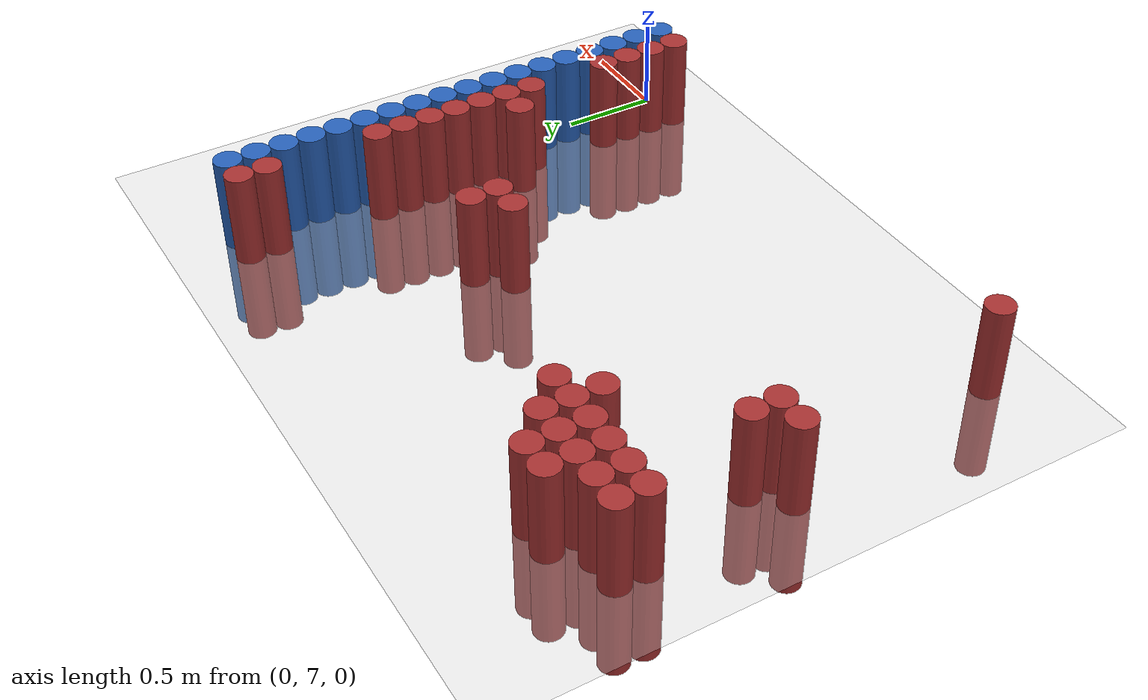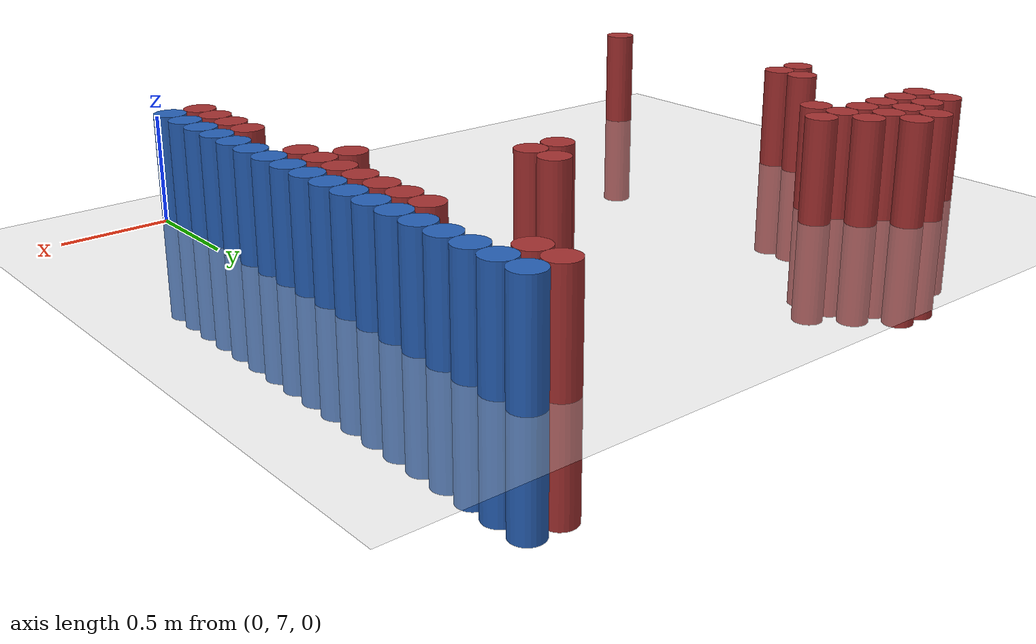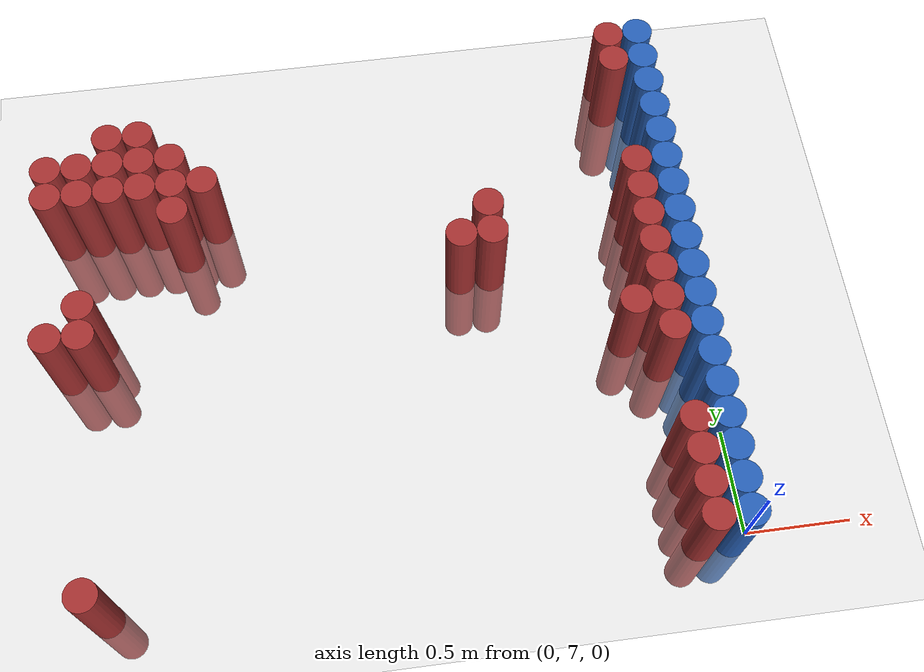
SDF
<sdf version="1.6">
 <world name="default">
  <model name="ground_plane">
   <static>1</static>
   <link name="link">
    <collision name="collision">
     <geometry><plane><normal>0 0 1</normal><size>100 100</size></plane></geometry>
     <surface><friction><ode><mu>100</mu><mu2>50</mu2></ode></friction></surface>
    </collision>
    <visual name="visual">
     <cast_shadows>0</cast_shadows>
     <geometry><plane><normal>0 0 1</normal><size>100 100</size></plane></geometry>
     <material>
      <script><uri>file://media/materials/scripts/gazebo.material</uri><name>Gazebo/Grey</name></script>
     </material>
    </visual>
   </link>
  </model>
  <model name="unit_cylinder_159">
   <static>1</static>
   <pose>-3.075000 8.175000 0.000000 0.000000 0.000000 0.000000</pose>
   <link name="link">
    <inertial>
     <mass>1</mass>
     <inertia><ixx>0.145833</ixx><ixy>0</ixy><ixz>0</ixz><iyy>0.145833</iyy><iyz>0</iyz><izz>0.125</izz></inertia>
    </inertial>
    <collision name="collision">
     <geometry><cylinder><radius>0.075000</radius><length>1</length></cylinder></geometry>
    </collision>
    <visual name="visual">
     <geometry><cylinder><radius>0.075000</radius><length>1</length></cylinder></geometry>
     <material>
      <ambient>0.648000 0.192000 0.192000 1</ambient>
      <diffuse>0.648000 0.192000 0.192000 1</diffuse>
     </material>
     <material>
      <script><name>Gazebo/Grey</name><uri>file://media/materials/scripts/gazebo.material</uri></script>
     </material>
    </visual>
   </link>
  </model>
  <model name="unit_cylinder_160">
   <static>1</static>
   <pose>-3.075000 8.925000 0.000000 0.000000 0.000000 0.000000</pose>
   <link name="link">
    <inertial>
     <mass>1</mass>
     <inertia><ixx>0.145833</ixx><ixy>0</ixy><ixz>0</ixz><iyy>0.145833</iyy><iyz>0</iyz><izz>0.125</izz></inertia>
    </inertial>
    <collision name="collision">
     <geometry><cylinder><radius>0.075000</radius><length>1</length></cylinder></geometry>
    </collision>
    <visual name="visual">
     <geometry><cylinder><radius>0.075000</radius><length>1</length></cylinder></geometry>
     <material>
      <ambient>0.648000 0.192000 0.192000 1</ambient>
      <diffuse>0.648000 0.192000 0.192000 1</diffuse>
     </material>
     <material>
      <script><name>Gazebo/Grey</name><uri>file://media/materials/scripts/gazebo.material</uri></script>
     </material>
    </visual>
   </link>
  </model>
  <model name="unit_cylinder_161">
   <static>1</static>
   <pose>-3.075000 9.075000 0.000000 0.000000 0.000000 0.000000</pose>
   <link name="link">
    <inertial>
     <mass>1</mass>
     <inertia><ixx>0.145833</ixx><ixy>0</ixy><ixz>0</ixz><iyy>0.145833</iyy><iyz>0</iyz><izz>0.125</izz></inertia>
    </inertial>
    <collision name="collision">
     <geometry><cylinder><radius>0.075000</radius><length>1</length></cylinder></geometry>
    </collision>
    <visual name="visual">
     <geometry><cylinder><radius>0.075000</radius><length>1</length></cylinder></geometry>
     <material>
      <ambient>0.648000 0.192000 0.192000 1</ambient>
      <diffuse>0.648000 0.192000 0.192000 1</diffuse>
     </material>
     <material>
      <script><name>Gazebo/Grey</name><uri>file://media/materials/scripts/gazebo.material</uri></script>
     </material>
    </visual>
   </link>
  </model>
  <model name="unit_cylinder_163">
   <static>1</static>
   <pose>-2.925000 6.975000 0.000000 0.000000 0.000000 0.000000</pose>
   <link name="link">
    <inertial>
     <mass>1</mass>
     <inertia><ixx>0.145833</ixx><ixy>0</ixy><ixz>0</ixz><iyy>0.145833</iyy><iyz>0</iyz><izz>0.125</izz></inertia>
    </inertial>
    <collision name="collision">
     <geometry><cylinder><radius>0.075000</radius><length>1</length></cylinder></geometry>
    </collision>
    <visual name="visual">
     <geometry><cylinder><radius>0.075000</radius><length>1</length></cylinder></geometry>
     <material>
      <ambient>0.648000 0.192000 0.192000 1</ambient>
      <diffuse>0.648000 0.192000 0.192000 1</diffuse>
     </material>
     <material>
      <script><name>Gazebo/Grey</name><uri>file://media/materials/scripts/gazebo.material</uri></script>
     </material>
    </visual>
   </link>
  </model>
  <model name="unit_cylinder_164">
   <static>1</static>
   <pose>-2.925000 8.175000 0.000000 0.000000 0.000000 0.000000</pose>
   <link name="link">
    <inertial>
     <mass>1</mass>
     <inertia><ixx>0.145833</ixx><ixy>0</ixy><ixz>0</ixz><iyy>0.145833</iyy><iyz>0</iyz><izz>0.125</izz></inertia>
    </inertial>
    <collision name="collision">
     <geometry><cylinder><radius>0.075000</radius><length>1</length></cylinder></geometry>
    </collision>
    <visual name="visual">
     <geometry><cylinder><radius>0.075000</radius><length>1</length></cylinder></geometry>
     <material>
      <ambient>0.648000 0.192000 0.192000 1</ambient>
      <diffuse>0.648000 0.192000 0.192000 1</diffuse>
     </material>
     <material>
      <script><name>Gazebo/Grey</name><uri>file://media/materials/scripts/gazebo.material</uri></script>
     </material>
    </visual>
   </link>
  </model>
  <model name="unit_cylinder_165">
   <static>1</static>
   <pose>-2.925000 8.325000 0.000000 0.000000 0.000000 0.000000</pose>
   <link name="link">
    <inertial>
     <mass>1</mass>
     <inertia><ixx>0.145833</ixx><ixy>0</ixy><ixz>0</ixz><iyy>0.145833</iyy><iyz>0</iyz><izz>0.125</izz></inertia>
    </inertial>
    <collision name="collision">
     <geometry><cylinder><radius>0.075000</radius><length>1</length></cylinder></geometry>
    </collision>
    <visual name="visual">
     <geometry><cylinder><radius>0.075000</radius><length>1</length></cylinder></geometry>
     <material>
      <ambient>0.648000 0.192000 0.192000 1</ambient>
      <diffuse>0.648000 0.192000 0.192000 1</diffuse>
     </material>
     <material>
      <script><name>Gazebo/Grey</name><uri>file://media/materials/scripts/gazebo.material</uri></script>
     </material>
    </visual>
   </link>
  </model>
  <model name="unit_cylinder_166">
   <static>1</static>
   <pose>-2.925000 8.925000 0.000000 0.000000 0.000000 0.000000</pose>
   <link name="link">
    <inertial>
     <mass>1</mass>
     <inertia><ixx>0.145833</ixx><ixy>0</ixy><ixz>0</ixz><iyy>0.145833</iyy><iyz>0</iyz><izz>0.125</izz></inertia>
    </inertial>
    <collision name="collision">
     <geometry><cylinder><radius>0.075000</radius><length>1</length></cylinder></geometry>
    </collision>
    <visual name="visual">
     <geometry><cylinder><radius>0.075000</radius><length>1</length></cylinder></geometry>
     <material>
      <ambient>0.648000 0.192000 0.192000 1</ambient>
      <diffuse>0.648000 0.192000 0.192000 1</diffuse>
     </material>
     <material>
      <script><name>Gazebo/Grey</name><uri>file://media/materials/scripts/gazebo.material</uri></script>
     </material>
    </visual>
   </link>
  </model>
  <model name="unit_cylinder_167">
   <static>1</static>
   <pose>-2.925000 9.075000 0.000000 0.000000 0.000000 0.000000</pose>
   <link name="link">
    <inertial>
     <mass>1</mass>
     <inertia><ixx>0.145833</ixx><ixy>0</ixy><ixz>0</ixz><iyy>0.145833</iyy><iyz>0</iyz><izz>0.125</izz></inertia>
    </inertial>
    <collision name="collision">
     <geometry><cylinder><radius>0.075000</radius><length>1</length></cylinder></geometry>
    </collision>
    <visual name="visual">
     <geometry><cylinder><radius>0.075000</radius><length>1</length></cylinder></geometry>
     <material>
      <ambient>0.648000 0.192000 0.192000 1</ambient>
      <diffuse>0.648000 0.192000 0.192000 1</diffuse>
     </material>
     <material>
      <script><name>Gazebo/Grey</name><uri>file://media/materials/scripts/gazebo.material</uri></script>
     </material>
    </visual>
   </link>
  </model>
  <model name="unit_cylinder_170">
   <static>1</static>
   <pose>-2.775000 8.925000 0.000000 0.000000 0.000000 0.000000</pose>
   <link name="link">
    <inertial>
     <mass>1</mass>
     <inertia><ixx>0.145833</ixx><ixy>0</ixy><ixz>0</ixz><iyy>0.145833</iyy><iyz>0</iyz><izz>0.125</izz></inertia>
    </inertial>
    <collision name="collision">
     <geometry><cylinder><radius>0.075000</radius><length>1</length></cylinder></geometry>
    </collision>
    <visual name="visual">
     <geometry><cylinder><radius>0.075000</radius><length>1</length></cylinder></geometry>
     <material>
      <ambient>0.648000 0.192000 0.192000 1</ambient>
      <diffuse>0.648000 0.192000 0.192000 1</diffuse>
     </material>
     <material>
      <script><name>Gazebo/Grey</name><uri>file://media/materials/scripts/gazebo.material</uri></script>
     </material>
    </visual>
   </link>
  </model>
  <model name="unit_cylinder_171">
   <static>1</static>
   <pose>-2.775000 9.075000 0.000000 0.000000 0.000000 0.000000</pose>
   <link name="link">
    <inertial>
     <mass>1</mass>
     <inertia><ixx>0.145833</ixx><ixy>0</ixy><ixz>0</ixz><iyy>0.145833</iyy><iyz>0</iyz><izz>0.125</izz></inertia>
    </inertial>
    <collision name="collision">
     <geometry><cylinder><radius>0.075000</radius><length>1</length></cylinder></geometry>
    </collision>
    <visual name="visual">
     <geometry><cylinder><radius>0.075000</radius><length>1</length></cylinder></geometry>
     <material>
      <ambient>0.648000 0.192000 0.192000 1</ambient>
      <diffuse>0.648000 0.192000 0.192000 1</diffuse>
     </material>
     <material>
      <script><name>Gazebo/Grey</name><uri>file://media/materials/scripts/gazebo.material</uri></script>
     </material>
    </visual>
   </link>
  </model>
  <model name="unit_cylinder_172">
   <static>1</static>
   <pose>-2.775000 9.225000 0.000000 0.000000 0.000000 0.000000</pose>
   <link name="link">
    <inertial>
     <mass>1</mass>
     <inertia><ixx>0.145833</ixx><ixy>0</ixy><ixz>0</ixz><iyy>0.145833</iyy><iyz>0</iyz><izz>0.125</izz></inertia>
    </inertial>
    <collision name="collision">
     <geometry><cylinder><radius>0.075000</radius><length>1</length></cylinder></geometry>
    </collision>
    <visual name="visual">
     <geometry><cylinder><radius>0.075000</radius><length>1</length></cylinder></geometry>
     <material>
      <ambient>0.648000 0.192000 0.192000 1</ambient>
      <diffuse>0.648000 0.192000 0.192000 1</diffuse>
     </material>
     <material>
      <script><name>Gazebo/Grey</name><uri>file://media/materials/scripts/gazebo.material</uri></script>
     </material>
    </visual>
   </link>
  </model>
  <model name="unit_cylinder_175">
   <static>1</static>
   <pose>-2.625000 8.925000 0.000000 0.000000 0.000000 0.000000</pose>
   <link name="link">
    <inertial>
     <mass>1</mass>
     <inertia><ixx>0.145833</ixx><ixy>0</ixy><ixz>0</ixz><iyy>0.145833</iyy><iyz>0</iyz><izz>0.125</izz></inertia>
    </inertial>
    <collision name="collision">
     <geometry><cylinder><radius>0.075000</radius><length>1</length></cylinder></geometry>
    </collision>
    <visual name="visual">
     <geometry><cylinder><radius>0.075000</radius><length>1</length></cylinder></geometry>
     <material>
      <ambient>0.648000 0.192000 0.192000 1</ambient>
      <diffuse>0.648000 0.192000 0.192000 1</diffuse>
     </material>
     <material>
      <script><name>Gazebo/Grey</name><uri>file://media/materials/scripts/gazebo.material</uri></script>
     </material>
    </visual>
   </link>
  </model>
  <model name="unit_cylinder_176">
   <static>1</static>
   <pose>-2.625000 9.075000 0.000000 0.000000 0.000000 0.000000</pose>
   <link name="link">
    <inertial>
     <mass>1</mass>
     <inertia><ixx>0.145833</ixx><ixy>0</ixy><ixz>0</ixz><iyy>0.145833</iyy><iyz>0</iyz><izz>0.125</izz></inertia>
    </inertial>
    <collision name="collision">
     <geometry><cylinder><radius>0.075000</radius><length>1</length></cylinder></geometry>
    </collision>
    <visual name="visual">
     <geometry><cylinder><radius>0.075000</radius><length>1</length></cylinder></geometry>
     <material>
      <ambient>0.648000 0.192000 0.192000 1</ambient>
      <diffuse>0.648000 0.192000 0.192000 1</diffuse>
     </material>
     <material>
      <script><name>Gazebo/Grey</name><uri>file://media/materials/scripts/gazebo.material</uri></script>
     </material>
    </visual>
   </link>
  </model>
  <model name="unit_cylinder_177">
   <static>1</static>
   <pose>-2.625000 9.225000 0.000000 0.000000 0.000000 0.000000</pose>
   <link name="link">
    <inertial>
     <mass>1</mass>
     <inertia><ixx>0.145833</ixx><ixy>0</ixy><ixz>0</ixz><iyy>0.145833</iyy><iyz>0</iyz><izz>0.125</izz></inertia>
    </inertial>
    <collision name="collision">
     <geometry><cylinder><radius>0.075000</radius><length>1</length></cylinder></geometry>
    </collision>
    <visual name="visual">
     <geometry><cylinder><radius>0.075000</radius><length>1</length></cylinder></geometry>
     <material>
      <ambient>0.648000 0.192000 0.192000 1</ambient>
      <diffuse>0.648000 0.192000 0.192000 1</diffuse>
     </material>
     <material>
      <script><name>Gazebo/Grey</name><uri>file://media/materials/scripts/gazebo.material</uri></script>
     </material>
    </visual>
   </link>
  </model>
  <model name="unit_cylinder_183">
   <static>1</static>
   <pose>-2.475000 8.775000 0.000000 0.000000 0.000000 0.000000</pose>
   <link name="link">
    <inertial>
     <mass>1</mass>
     <inertia><ixx>0.145833</ixx><ixy>0</ixy><ixz>0</ixz><iyy>0.145833</iyy><iyz>0</iyz><izz>0.125</izz></inertia>
    </inertial>
    <collision name="collision">
     <geometry><cylinder><radius>0.075000</radius><length>1</length></cylinder></geometry>
    </collision>
    <visual name="visual">
     <geometry><cylinder><radius>0.075000</radius><length>1</length></cylinder></geometry>
     <material>
      <ambient>0.648000 0.192000 0.192000 1</ambient>
      <diffuse>0.648000 0.192000 0.192000 1</diffuse>
     </material>
     <material>
      <script><name>Gazebo/Grey</name><uri>file://media/materials/scripts/gazebo.material</uri></script>
     </material>
    </visual>
   </link>
  </model>
  <model name="unit_cylinder_184">
   <static>1</static>
   <pose>-2.475000 8.925000 0.000000 0.000000 0.000000 0.000000</pose>
   <link name="link">
    <inertial>
     <mass>1</mass>
     <inertia><ixx>0.145833</ixx><ixy>0</ixy><ixz>0</ixz><iyy>0.145833</iyy><iyz>0</iyz><izz>0.125</izz></inertia>
    </inertial>
    <collision name="collision">
     <geometry><cylinder><radius>0.075000</radius><length>1</length></cylinder></geometry>
    </collision>
    <visual name="visual">
     <geometry><cylinder><radius>0.075000</radius><length>1</length></cylinder></geometry>
     <material>
      <ambient>0.648000 0.192000 0.192000 1</ambient>
      <diffuse>0.648000 0.192000 0.192000 1</diffuse>
     </material>
     <material>
      <script><name>Gazebo/Grey</name><uri>file://media/materials/scripts/gazebo.material</uri></script>
     </material>
    </visual>
   </link>
  </model>
  <model name="unit_cylinder_185">
   <static>1</static>
   <pose>-2.475000 9.075000 0.000000 0.000000 0.000000 0.000000</pose>
   <link name="link">
    <inertial>
     <mass>1</mass>
     <inertia><ixx>0.145833</ixx><ixy>0</ixy><ixz>0</ixz><iyy>0.145833</iyy><iyz>0</iyz><izz>0.125</izz></inertia>
    </inertial>
    <collision name="collision">
     <geometry><cylinder><radius>0.075000</radius><length>1</length></cylinder></geometry>
    </collision>
    <visual name="visual">
     <geometry><cylinder><radius>0.075000</radius><length>1</length></cylinder></geometry>
     <material>
      <ambient>0.648000 0.192000 0.192000 1</ambient>
      <diffuse>0.648000 0.192000 0.192000 1</diffuse>
     </material>
     <material>
      <script><name>Gazebo/Grey</name><uri>file://media/materials/scripts/gazebo.material</uri></script>
     </material>
    </visual>
   </link>
  </model>
  <model name="unit_cylinder_189">
   <static>1</static>
   <pose>-2.325000 8.925000 0.000000 0.000000 0.000000 0.000000</pose>
   <link name="link">
    <inertial>
     <mass>1</mass>
     <inertia><ixx>0.145833</ixx><ixy>0</ixy><ixz>0</ixz><iyy>0.145833</iyy><iyz>0</iyz><izz>0.125</izz></inertia>
    </inertial>
    <collision name="collision">
     <geometry><cylinder><radius>0.075000</radius><length>1</length></cylinder></geometry>
    </collision>
    <visual name="visual">
     <geometry><cylinder><radius>0.075000</radius><length>1</length></cylinder></geometry>
     <material>
      <ambient>0.648000 0.192000 0.192000 1</ambient>
      <diffuse>0.648000 0.192000 0.192000 1</diffuse>
     </material>
     <material>
      <script><name>Gazebo/Grey</name><uri>file://media/materials/scripts/gazebo.material</uri></script>
     </material>
    </visual>
   </link>
  </model>
  <model name="unit_cylinder_202">
   <static>1</static>
   <pose>-1.125000 8.475000 0.000000 0.000000 0.000000 0.000000</pose>
   <link name="link">
    <inertial>
     <mass>1</mass>
     <inertia><ixx>0.145833</ixx><ixy>0</ixy><ixz>0</ixz><iyy>0.145833</iyy><iyz>0</iyz><izz>0.125</izz></inertia>
    </inertial>
    <collision name="collision">
     <geometry><cylinder><radius>0.075000</radius><length>1</length></cylinder></geometry>
    </collision>
    <visual name="visual">
     <geometry><cylinder><radius>0.075000</radius><length>1</length></cylinder></geometry>
     <material>
      <ambient>0.648000 0.192000 0.192000 1</ambient>
      <diffuse>0.648000 0.192000 0.192000 1</diffuse>
     </material>
     <material>
      <script><name>Gazebo/Grey</name><uri>file://media/materials/scripts/gazebo.material</uri></script>
     </material>
    </visual>
   </link>
  </model>
  <model name="unit_cylinder_208">
   <static>1</static>
   <pose>-0.975000 8.475000 0.000000 0.000000 0.000000 0.000000</pose>
   <link name="link">
    <inertial>
     <mass>1</mass>
     <inertia><ixx>0.145833</ixx><ixy>0</ixy><ixz>0</ixz><iyy>0.145833</iyy><iyz>0</iyz><izz>0.125</izz></inertia>
    </inertial>
    <collision name="collision">
     <geometry><cylinder><radius>0.075000</radius><length>1</length></cylinder></geometry>
    </collision>
    <visual name="visual">
     <geometry><cylinder><radius>0.075000</radius><length>1</length></cylinder></geometry>
     <material>
      <ambient>0.648000 0.192000 0.192000 1</ambient>
      <diffuse>0.648000 0.192000 0.192000 1</diffuse>
     </material>
     <material>
      <script><name>Gazebo/Grey</name><uri>file://media/materials/scripts/gazebo.material</uri></script>
     </material>
    </visual>
   </link>
  </model>
  <model name="unit_cylinder_209">
   <static>1</static>
   <pose>-0.975000 8.625000 0.000000 0.000000 0.000000 0.000000</pose>
   <link name="link">
    <inertial>
     <mass>1</mass>
     <inertia><ixx>0.145833</ixx><ixy>0</ixy><ixz>0</ixz><iyy>0.145833</iyy><iyz>0</iyz><izz>0.125</izz></inertia>
    </inertial>
    <collision name="collision">
     <geometry><cylinder><radius>0.075000</radius><length>1</length></cylinder></geometry>
    </collision>
    <visual name="visual">
     <geometry><cylinder><radius>0.075000</radius><length>1</length></cylinder></geometry>
     <material>
      <ambient>0.648000 0.192000 0.192000 1</ambient>
      <diffuse>0.648000 0.192000 0.192000 1</diffuse>
     </material>
     <material>
      <script><name>Gazebo/Grey</name><uri>file://media/materials/scripts/gazebo.material</uri></script>
     </material>
    </visual>
   </link>
  </model>
  <model name="unit_cylinder_217">
   <static>1</static>
   <pose>-0.375000 8.025000 0.000000 0.000000 0.000000 0.000000</pose>
   <link name="link">
    <inertial>
     <mass>1</mass>
     <inertia><ixx>0.145833</ixx><ixy>0</ixy><ixz>0</ixz><iyy>0.145833</iyy><iyz>0</iyz><izz>0.125</izz></inertia>
    </inertial>
    <collision name="collision">
     <geometry><cylinder><radius>0.075000</radius><length>1</length></cylinder></geometry>
    </collision>
    <visual name="visual">
     <geometry><cylinder><radius>0.075000</radius><length>1</length></cylinder></geometry>
     <material>
      <ambient>0.648000 0.192000 0.192000 1</ambient>
      <diffuse>0.648000 0.192000 0.192000 1</diffuse>
     </material>
     <material>
      <script><name>Gazebo/Grey</name><uri>file://media/materials/scripts/gazebo.material</uri></script>
     </material>
    </visual>
   </link>
  </model>
  <model name="unit_cylinder_221">
   <static>1</static>
   <pose>-0.225000 6.975000 0.000000 0.000000 0.000000 0.000000</pose>
   <link name="link">
    <inertial>
     <mass>1</mass>
     <inertia><ixx>0.145833</ixx><ixy>0</ixy><ixz>0</ixz><iyy>0.145833</iyy><iyz>0</iyz><izz>0.125</izz></inertia>
    </inertial>
    <collision name="collision">
     <geometry><cylinder><radius>0.075000</radius><length>1</length></cylinder></geometry>
    </collision>
    <visual name="visual">
     <geometry><cylinder><radius>0.075000</radius><length>1</length></cylinder></geometry>
     <material>
      <ambient>0.648000 0.192000 0.192000 1</ambient>
      <diffuse>0.648000 0.192000 0.192000 1</diffuse>
     </material>
     <material>
      <script><name>Gazebo/Grey</name><uri>file://media/materials/scripts/gazebo.material</uri></script>
     </material>
    </visual>
   </link>
  </model>
  <model name="unit_cylinder_222">
   <static>1</static>
   <pose>-0.225000 7.125000 0.000000 0.000000 0.000000 0.000000</pose>
   <link name="link">
    <inertial>
     <mass>1</mass>
     <inertia><ixx>0.145833</ixx><ixy>0</ixy><ixz>0</ixz><iyy>0.145833</iyy><iyz>0</iyz><izz>0.125</izz></inertia>
    </inertial>
    <collision name="collision">
     <geometry><cylinder><radius>0.075000</radius><length>1</length></cylinder></geometry>
    </collision>
    <visual name="visual">
     <geometry><cylinder><radius>0.075000</radius><length>1</length></cylinder></geometry>
     <material>
      <ambient>0.648000 0.192000 0.192000 1</ambient>
      <diffuse>0.648000 0.192000 0.192000 1</diffuse>
     </material>
     <material>
      <script><name>Gazebo/Grey</name><uri>file://media/materials/scripts/gazebo.material</uri></script>
     </material>
    </visual>
   </link>
  </model>
  <model name="unit_cylinder_223">
   <static>1</static>
   <pose>-0.225000 7.275000 0.000000 0.000000 0.000000 0.000000</pose>
   <link name="link">
    <inertial>
     <mass>1</mass>
     <inertia><ixx>0.145833</ixx><ixy>0</ixy><ixz>0</ixz><iyy>0.145833</iyy><iyz>0</iyz><izz>0.125</izz></inertia>
    </inertial>
    <collision name="collision">
     <geometry><cylinder><radius>0.075000</radius><length>1</length></cylinder></geometry>
    </collision>
    <visual name="visual">
     <geometry><cylinder><radius>0.075000</radius><length>1</length></cylinder></geometry>
     <material>
      <ambient>0.648000 0.192000 0.192000 1</ambient>
      <diffuse>0.648000 0.192000 0.192000 1</diffuse>
     </material>
     <material>
      <script><name>Gazebo/Grey</name><uri>file://media/materials/scripts/gazebo.material</uri></script>
     </material>
    </visual>
   </link>
  </model>
  <model name="unit_cylinder_224">
   <static>1</static>
   <pose>-0.225000 7.425000 0.000000 0.000000 0.000000 0.000000</pose>
   <link name="link">
    <inertial>
     <mass>1</mass>
     <inertia><ixx>0.145833</ixx><ixy>0</ixy><ixz>0</ixz><iyy>0.145833</iyy><iyz>0</iyz><izz>0.125</izz></inertia>
    </inertial>
    <collision name="collision">
     <geometry><cylinder><radius>0.075000</radius><length>1</length></cylinder></geometry>
    </collision>
    <visual name="visual">
     <geometry><cylinder><radius>0.075000</radius><length>1</length></cylinder></geometry>
     <material>
      <ambient>0.648000 0.192000 0.192000 1</ambient>
      <diffuse>0.648000 0.192000 0.192000 1</diffuse>
     </material>
     <material>
      <script><name>Gazebo/Grey</name><uri>file://media/materials/scripts/gazebo.material</uri></script>
     </material>
    </visual>
   </link>
  </model>
  <model name="unit_cylinder_225">
   <static>1</static>
   <pose>-0.225000 7.875000 0.000000 0.000000 0.000000 0.000000</pose>
   <link name="link">
    <inertial>
     <mass>1</mass>
     <inertia><ixx>0.145833</ixx><ixy>0</ixy><ixz>0</ixz><iyy>0.145833</iyy><iyz>0</iyz><izz>0.125</izz></inertia>
    </inertial>
    <collision name="collision">
     <geometry><cylinder><radius>0.075000</radius><length>1</length></cylinder></geometry>
    </collision>
    <visual name="visual">
     <geometry><cylinder><radius>0.075000</radius><length>1</length></cylinder></geometry>
     <material>
      <ambient>0.648000 0.192000 0.192000 1</ambient>
      <diffuse>0.648000 0.192000 0.192000 1</diffuse>
     </material>
     <material>
      <script><name>Gazebo/Grey</name><uri>file://media/materials/scripts/gazebo.material</uri></script>
     </material>
    </visual>
   </link>
  </model>
  <model name="unit_cylinder_226">
   <static>1</static>
   <pose>-0.225000 8.025000 0.000000 0.000000 0.000000 0.000000</pose>
   <link name="link">
    <inertial>
     <mass>1</mass>
     <inertia><ixx>0.145833</ixx><ixy>0</ixy><ixz>0</ixz><iyy>0.145833</iyy><iyz>0</iyz><izz>0.125</izz></inertia>
    </inertial>
    <collision name="collision">
     <geometry><cylinder><radius>0.075000</radius><length>1</length></cylinder></geometry>
    </collision>
    <visual name="visual">
     <geometry><cylinder><radius>0.075000</radius><length>1</length></cylinder></geometry>
     <material>
      <ambient>0.648000 0.192000 0.192000 1</ambient>
      <diffuse>0.648000 0.192000 0.192000 1</diffuse>
     </material>
     <material>
      <script><name>Gazebo/Grey</name><uri>file://media/materials/scripts/gazebo.material</uri></script>
     </material>
    </visual>
   </link>
  </model>
  <model name="unit_cylinder_227">
   <static>1</static>
   <pose>-0.225000 8.175000 0.000000 0.000000 0.000000 0.000000</pose>
   <link name="link">
    <inertial>
     <mass>1</mass>
     <inertia><ixx>0.145833</ixx><ixy>0</ixy><ixz>0</ixz><iyy>0.145833</iyy><iyz>0</iyz><izz>0.125</izz></inertia>
    </inertial>
    <collision name="collision">
     <geometry><cylinder><radius>0.075000</radius><length>1</length></cylinder></geometry>
    </collision>
    <visual name="visual">
     <geometry><cylinder><radius>0.075000</radius><length>1</length></cylinder></geometry>
     <material>
      <ambient>0.648000 0.192000 0.192000 1</ambient>
      <diffuse>0.648000 0.192000 0.192000 1</diffuse>
     </material>
     <material>
      <script><name>Gazebo/Grey</name><uri>file://media/materials/scripts/gazebo.material</uri></script>
     </material>
    </visual>
   </link>
  </model>
  <model name="unit_cylinder_228">
   <static>1</static>
   <pose>-0.225000 8.325000 0.000000 0.000000 0.000000 0.000000</pose>
   <link name="link">
    <inertial>
     <mass>1</mass>
     <inertia><ixx>0.145833</ixx><ixy>0</ixy><ixz>0</ixz><iyy>0.145833</iyy><iyz>0</iyz><izz>0.125</izz></inertia>
    </inertial>
    <collision name="collision">
     <geometry><cylinder><radius>0.075000</radius><length>1</length></cylinder></geometry>
    </collision>
    <visual name="visual">
     <geometry><cylinder><radius>0.075000</radius><length>1</length></cylinder></geometry>
     <material>
      <ambient>0.648000 0.192000 0.192000 1</ambient>
      <diffuse>0.648000 0.192000 0.192000 1</diffuse>
     </material>
     <material>
      <script><name>Gazebo/Grey</name><uri>file://media/materials/scripts/gazebo.material</uri></script>
     </material>
    </visual>
   </link>
  </model>
  <model name="unit_cylinder_229">
   <static>1</static>
   <pose>-0.225000 8.475000 0.000000 0.000000 0.000000 0.000000</pose>
   <link name="link">
    <inertial>
     <mass>1</mass>
     <inertia><ixx>0.145833</ixx><ixy>0</ixy><ixz>0</ixz><iyy>0.145833</iyy><iyz>0</iyz><izz>0.125</izz></inertia>
    </inertial>
    <collision name="collision">
     <geometry><cylinder><radius>0.075000</radius><length>1</length></cylinder></geometry>
    </collision>
    <visual name="visual">
     <geometry><cylinder><radius>0.075000</radius><length>1</length></cylinder></geometry>
     <material>
      <ambient>0.648000 0.192000 0.192000 1</ambient>
      <diffuse>0.648000 0.192000 0.192000 1</diffuse>
     </material>
     <material>
      <script><name>Gazebo/Grey</name><uri>file://media/materials/scripts/gazebo.material</uri></script>
     </material>
    </visual>
   </link>
  </model>
  <model name="unit_cylinder_230">
   <static>1</static>
   <pose>-0.225000 8.625000 0.000000 0.000000 0.000000 0.000000</pose>
   <link name="link">
    <inertial>
     <mass>1</mass>
     <inertia><ixx>0.145833</ixx><ixy>0</ixy><ixz>0</ixz><iyy>0.145833</iyy><iyz>0</iyz><izz>0.125</izz></inertia>
    </inertial>
    <collision name="collision">
     <geometry><cylinder><radius>0.075000</radius><length>1</length></cylinder></geometry>
    </collision>
    <visual name="visual">
     <geometry><cylinder><radius>0.075000</radius><length>1</length></cylinder></geometry>
     <material>
      <ambient>0.648000 0.192000 0.192000 1</ambient>
      <diffuse>0.648000 0.192000 0.192000 1</diffuse>
     </material>
     <material>
      <script><name>Gazebo/Grey</name><uri>file://media/materials/scripts/gazebo.material</uri></script>
     </material>
    </visual>
   </link>
  </model>
  <model name="unit_cylinder_231">
   <static>1</static>
   <pose>-0.225000 8.775000 0.000000 0.000000 0.000000 0.000000</pose>
   <link name="link">
    <inertial>
     <mass>1</mass>
     <inertia><ixx>0.145833</ixx><ixy>0</ixy><ixz>0</ixz><iyy>0.145833</iyy><iyz>0</iyz><izz>0.125</izz></inertia>
    </inertial>
    <collision name="collision">
     <geometry><cylinder><radius>0.075000</radius><length>1</length></cylinder></geometry>
    </collision>
    <visual name="visual">
     <geometry><cylinder><radius>0.075000</radius><length>1</length></cylinder></geometry>
     <material>
      <ambient>0.648000 0.192000 0.192000 1</ambient>
      <diffuse>0.648000 0.192000 0.192000 1</diffuse>
     </material>
     <material>
      <script><name>Gazebo/Grey</name><uri>file://media/materials/scripts/gazebo.material</uri></script>
     </material>
    </visual>
   </link>
  </model>
  <model name="unit_cylinder_232">
   <static>1</static>
   <pose>-0.225000 9.375000 0.000000 0.000000 0.000000 0.000000</pose>
   <link name="link">
    <inertial>
     <mass>1</mass>
     <inertia><ixx>0.145833</ixx><ixy>0</ixy><ixz>0</ixz><iyy>0.145833</iyy><iyz>0</iyz><izz>0.125</izz></inertia>
    </inertial>
    <collision name="collision">
     <geometry><cylinder><radius>0.075000</radius><length>1</length></cylinder></geometry>
    </collision>
    <visual name="visual">
     <geometry><cylinder><radius>0.075000</radius><length>1</length></cylinder></geometry>
     <material>
      <ambient>0.648000 0.192000 0.192000 1</ambient>
      <diffuse>0.648000 0.192000 0.192000 1</diffuse>
     </material>
     <material>
      <script><name>Gazebo/Grey</name><uri>file://media/materials/scripts/gazebo.material</uri></script>
     </material>
    </visual>
   </link>
  </model>
  <model name="unit_cylinder_233">
   <static>1</static>
   <pose>-0.225000 9.525000 0.000000 0.000000 0.000000 0.000000</pose>
   <link name="link">
    <inertial>
     <mass>1</mass>
     <inertia><ixx>0.145833</ixx><ixy>0</ixy><ixz>0</ixz><iyy>0.145833</iyy><iyz>0</iyz><izz>0.125</izz></inertia>
    </inertial>
    <collision name="collision">
     <geometry><cylinder><radius>0.075000</radius><length>1</length></cylinder></geometry>
    </collision>
    <visual name="visual">
     <geometry><cylinder><radius>0.075000</radius><length>1</length></cylinder></geometry>
     <material>
      <ambient>0.648000 0.192000 0.192000 1</ambient>
      <diffuse>0.648000 0.192000 0.192000 1</diffuse>
     </material>
     <material>
      <script><name>Gazebo/Grey</name><uri>file://media/materials/scripts/gazebo.material</uri></script>
     </material>
    </visual>
   </link>
  </model>
  <model name="unit_cylinder_246">
   <static>1</static>
   <pose>-0.075000 6.975000 0.000000 0.000000 0.000000 0.000000</pose>
   <link name="link">
    <inertial>
     <mass>1</mass>
     <inertia><ixx>0.145833</ixx><ixy>0</ixy><ixz>0</ixz><iyy>0.145833</iyy><iyz>0</iyz><izz>0.125</izz></inertia>
    </inertial>
    <collision name="collision">
     <geometry><cylinder><radius>0.075000</radius><length>1</length></cylinder></geometry>
    </collision>
    <visual name="visual">
     <geometry><cylinder><radius>0.075000</radius><length>1</length></cylinder></geometry>
     <material>
      <ambient>0.152000 0.379000 0.720000 1</ambient>
      <diffuse>0.152000 0.379000 0.720000 1</diffuse>
     </material>
     <material>
      <script><name>Gazebo/Grey</name><uri>file://media/materials/scripts/gazebo.material</uri></script>
     </material>
    </visual>
   </link>
  </model>
  <model name="unit_cylinder_247">
   <static>1</static>
   <pose>-0.075000 7.125000 0.000000 0.000000 0.000000 0.000000</pose>
   <link name="link">
    <inertial>
     <mass>1</mass>
     <inertia><ixx>0.145833</ixx><ixy>0</ixy><ixz>0</ixz><iyy>0.145833</iyy><iyz>0</iyz><izz>0.125</izz></inertia>
    </inertial>
    <collision name="collision">
     <geometry><cylinder><radius>0.075000</radius><length>1</length></cylinder></geometry>
    </collision>
    <visual name="visual">
     <geometry><cylinder><radius>0.075000</radius><length>1</length></cylinder></geometry>
     <material>
      <ambient>0.152000 0.379000 0.720000 1</ambient>
      <diffuse>0.152000 0.379000 0.720000 1</diffuse>
     </material>
     <material>
      <script><name>Gazebo/Grey</name><uri>file://media/materials/scripts/gazebo.material</uri></script>
     </material>
    </visual>
   </link>
  </model>
  <model name="unit_cylinder_248">
   <static>1</static>
   <pose>-0.075000 7.275000 0.000000 0.000000 0.000000 0.000000</pose>
   <link name="link">
    <inertial>
     <mass>1</mass>
     <inertia><ixx>0.145833</ixx><ixy>0</ixy><ixz>0</ixz><iyy>0.145833</iyy><iyz>0</iyz><izz>0.125</izz></inertia>
    </inertial>
    <collision name="collision">
     <geometry><cylinder><radius>0.075000</radius><length>1</length></cylinder></geometry>
    </collision>
    <visual name="visual">
     <geometry><cylinder><radius>0.075000</radius><length>1</length></cylinder></geometry>
     <material>
      <ambient>0.152000 0.379000 0.720000 1</ambient>
      <diffuse>0.152000 0.379000 0.720000 1</diffuse>
     </material>
     <material>
      <script><name>Gazebo/Grey</name><uri>file://media/materials/scripts/gazebo.material</uri></script>
     </material>
    </visual>
   </link>
  </model>
  <model name="unit_cylinder_249">
   <static>1</static>
   <pose>-0.075000 7.425000 0.000000 0.000000 0.000000 0.000000</pose>
   <link name="link">
    <inertial>
     <mass>1</mass>
     <inertia><ixx>0.145833</ixx><ixy>0</ixy><ixz>0</ixz><iyy>0.145833</iyy><iyz>0</iyz><izz>0.125</izz></inertia>
    </inertial>
    <collision name="collision">
     <geometry><cylinder><radius>0.075000</radius><length>1</length></cylinder></geometry>
    </collision>
    <visual name="visual">
     <geometry><cylinder><radius>0.075000</radius><length>1</length></cylinder></geometry>
     <material>
      <ambient>0.152000 0.379000 0.720000 1</ambient>
      <diffuse>0.152000 0.379000 0.720000 1</diffuse>
     </material>
     <material>
      <script><name>Gazebo/Grey</name><uri>file://media/materials/scripts/gazebo.material</uri></script>
     </material>
    </visual>
   </link>
  </model>
  <model name="unit_cylinder_250">
   <static>1</static>
   <pose>-0.075000 7.575000 0.000000 0.000000 0.000000 0.000000</pose>
   <link name="link">
    <inertial>
     <mass>1</mass>
     <inertia><ixx>0.145833</ixx><ixy>0</ixy><ixz>0</ixz><iyy>0.145833</iyy><iyz>0</iyz><izz>0.125</izz></inertia>
    </inertial>
    <collision name="collision">
     <geometry><cylinder><radius>0.075000</radius><length>1</length></cylinder></geometry>
    </collision>
    <visual name="visual">
     <geometry><cylinder><radius>0.075000</radius><length>1</length></cylinder></geometry>
     <material>
      <ambient>0.152000 0.379000 0.720000 1</ambient>
      <diffuse>0.152000 0.379000 0.720000 1</diffuse>
     </material>
     <material>
      <script><name>Gazebo/Grey</name><uri>file://media/materials/scripts/gazebo.material</uri></script>
     </material>
    </visual>
   </link>
  </model>
  <model name="unit_cylinder_251">
   <static>1</static>
   <pose>-0.075000 7.725000 0.000000 0.000000 0.000000 0.000000</pose>
   <link name="link">
    <inertial>
     <mass>1</mass>
     <inertia><ixx>0.145833</ixx><ixy>0</ixy><ixz>0</ixz><iyy>0.145833</iyy><iyz>0</iyz><izz>0.125</izz></inertia>
    </inertial>
    <collision name="collision">
     <geometry><cylinder><radius>0.075000</radius><length>1</length></cylinder></geometry>
    </collision>
    <visual name="visual">
     <geometry><cylinder><radius>0.075000</radius><length>1</length></cylinder></geometry>
     <material>
      <ambient>0.152000 0.379000 0.720000 1</ambient>
      <diffuse>0.152000 0.379000 0.720000 1</diffuse>
     </material>
     <material>
      <script><name>Gazebo/Grey</name><uri>file://media/materials/scripts/gazebo.material</uri></script>
     </material>
    </visual>
   </link>
  </model>
  <model name="unit_cylinder_252">
   <static>1</static>
   <pose>-0.075000 7.875000 0.000000 0.000000 0.000000 0.000000</pose>
   <link name="link">
    <inertial>
     <mass>1</mass>
     <inertia><ixx>0.145833</ixx><ixy>0</ixy><ixz>0</ixz><iyy>0.145833</iyy><iyz>0</iyz><izz>0.125</izz></inertia>
    </inertial>
    <collision name="collision">
     <geometry><cylinder><radius>0.075000</radius><length>1</length></cylinder></geometry>
    </collision>
    <visual name="visual">
     <geometry><cylinder><radius>0.075000</radius><length>1</length></cylinder></geometry>
     <material>
      <ambient>0.152000 0.379000 0.720000 1</ambient>
      <diffuse>0.152000 0.379000 0.720000 1</diffuse>
     </material>
     <material>
      <script><name>Gazebo/Grey</name><uri>file://media/materials/scripts/gazebo.material</uri></script>
     </material>
    </visual>
   </link>
  </model>
  <model name="unit_cylinder_253">
   <static>1</static>
   <pose>-0.075000 8.025000 0.000000 0.000000 0.000000 0.000000</pose>
   <link name="link">
    <inertial>
     <mass>1</mass>
     <inertia><ixx>0.145833</ixx><ixy>0</ixy><ixz>0</ixz><iyy>0.145833</iyy><iyz>0</iyz><izz>0.125</izz></inertia>
    </inertial>
    <collision name="collision">
     <geometry><cylinder><radius>0.075000</radius><length>1</length></cylinder></geometry>
    </collision>
    <visual name="visual">
     <geometry><cylinder><radius>0.075000</radius><length>1</length></cylinder></geometry>
     <material>
      <ambient>0.152000 0.379000 0.720000 1</ambient>
      <diffuse>0.152000 0.379000 0.720000 1</diffuse>
     </material>
     <material>
      <script><name>Gazebo/Grey</name><uri>file://media/materials/scripts/gazebo.material</uri></script>
     </material>
    </visual>
   </link>
  </model>
  <model name="unit_cylinder_254">
   <static>1</static>
   <pose>-0.075000 8.175000 0.000000 0.000000 0.000000 0.000000</pose>
   <link name="link">
    <inertial>
     <mass>1</mass>
     <inertia><ixx>0.145833</ixx><ixy>0</ixy><ixz>0</ixz><iyy>0.145833</iyy><iyz>0</iyz><izz>0.125</izz></inertia>
    </inertial>
    <collision name="collision">
     <geometry><cylinder><radius>0.075000</radius><length>1</length></cylinder></geometry>
    </collision>
    <visual name="visual">
     <geometry><cylinder><radius>0.075000</radius><length>1</length></cylinder></geometry>
     <material>
      <ambient>0.152000 0.379000 0.720000 1</ambient>
      <diffuse>0.152000 0.379000 0.720000 1</diffuse>
     </material>
     <material>
      <script><name>Gazebo/Grey</name><uri>file://media/materials/scripts/gazebo.material</uri></script>
     </material>
    </visual>
   </link>
  </model>
  <model name="unit_cylinder_255">
   <static>1</static>
   <pose>-0.075000 8.325000 0.000000 0.000000 0.000000 0.000000</pose>
   <link name="link">
    <inertial>
     <mass>1</mass>
     <inertia><ixx>0.145833</ixx><ixy>0</ixy><ixz>0</ixz><iyy>0.145833</iyy><iyz>0</iyz><izz>0.125</izz></inertia>
    </inertial>
    <collision name="collision">
     <geometry><cylinder><radius>0.075000</radius><length>1</length></cylinder></geometry>
    </collision>
    <visual name="visual">
     <geometry><cylinder><radius>0.075000</radius><length>1</length></cylinder></geometry>
     <material>
      <ambient>0.152000 0.379000 0.720000 1</ambient>
      <diffuse>0.152000 0.379000 0.720000 1</diffuse>
     </material>
     <material>
      <script><name>Gazebo/Grey</name><uri>file://media/materials/scripts/gazebo.material</uri></script>
     </material>
    </visual>
   </link>
  </model>
  <model name="unit_cylinder_256">
   <static>1</static>
   <pose>-0.075000 8.475000 0.000000 0.000000 0.000000 0.000000</pose>
   <link name="link">
    <inertial>
     <mass>1</mass>
     <inertia><ixx>0.145833</ixx><ixy>0</ixy><ixz>0</ixz><iyy>0.145833</iyy><iyz>0</iyz><izz>0.125</izz></inertia>
    </inertial>
    <collision name="collision">
     <geometry><cylinder><radius>0.075000</radius><length>1</length></cylinder></geometry>
    </collision>
    <visual name="visual">
     <geometry><cylinder><radius>0.075000</radius><length>1</length></cylinder></geometry>
     <material>
      <ambient>0.152000 0.379000 0.720000 1</ambient>
      <diffuse>0.152000 0.379000 0.720000 1</diffuse>
     </material>
     <material>
      <script><name>Gazebo/Grey</name><uri>file://media/materials/scripts/gazebo.material</uri></script>
     </material>
    </visual>
   </link>
  </model>
  <model name="unit_cylinder_257">
   <static>1</static>
   <pose>-0.075000 8.625000 0.000000 0.000000 0.000000 0.000000</pose>
   <link name="link">
    <inertial>
     <mass>1</mass>
     <inertia><ixx>0.145833</ixx><ixy>0</ixy><ixz>0</ixz><iyy>0.145833</iyy><iyz>0</iyz><izz>0.125</izz></inertia>
    </inertial>
    <collision name="collision">
     <geometry><cylinder><radius>0.075000</radius><length>1</length></cylinder></geometry>
    </collision>
    <visual name="visual">
     <geometry><cylinder><radius>0.075000</radius><length>1</length></cylinder></geometry>
     <material>
      <ambient>0.152000 0.379000 0.720000 1</ambient>
      <diffuse>0.152000 0.379000 0.720000 1</diffuse>
     </material>
     <material>
      <script><name>Gazebo/Grey</name><uri>file://media/materials/scripts/gazebo.material</uri></script>
     </material>
    </visual>
   </link>
  </model>
  <model name="unit_cylinder_258">
   <static>1</static>
   <pose>-0.075000 8.775000 0.000000 0.000000 0.000000 0.000000</pose>
   <link name="link">
    <inertial>
     <mass>1</mass>
     <inertia><ixx>0.145833</ixx><ixy>0</ixy><ixz>0</ixz><iyy>0.145833</iyy><iyz>0</iyz><izz>0.125</izz></inertia>
    </inertial>
    <collision name="collision">
     <geometry><cylinder><radius>0.075000</radius><length>1</length></cylinder></geometry>
    </collision>
    <visual name="visual">
     <geometry><cylinder><radius>0.075000</radius><length>1</length></cylinder></geometry>
     <material>
      <ambient>0.152000 0.379000 0.720000 1</ambient>
      <diffuse>0.152000 0.379000 0.720000 1</diffuse>
     </material>
     <material>
      <script><name>Gazebo/Grey</name><uri>file://media/materials/scripts/gazebo.material</uri></script>
     </material>
    </visual>
   </link>
  </model>
  <model name="unit_cylinder_259">
   <static>1</static>
   <pose>-0.075000 8.925000 0.000000 0.000000 0.000000 0.000000</pose>
   <link name="link">
    <inertial>
     <mass>1</mass>
     <inertia><ixx>0.145833</ixx><ixy>0</ixy><ixz>0</ixz><iyy>0.145833</iyy><iyz>0</iyz><izz>0.125</izz></inertia>
    </inertial>
    <collision name="collision">
     <geometry><cylinder><radius>0.075000</radius><length>1</length></cylinder></geometry>
    </collision>
    <visual name="visual">
     <geometry><cylinder><radius>0.075000</radius><length>1</length></cylinder></geometry>
     <material>
      <ambient>0.152000 0.379000 0.720000 1</ambient>
      <diffuse>0.152000 0.379000 0.720000 1</diffuse>
     </material>
     <material>
      <script><name>Gazebo/Grey</name><uri>file://media/materials/scripts/gazebo.material</uri></script>
     </material>
    </visual>
   </link>
  </model>
  <model name="unit_cylinder_260">
   <static>1</static>
   <pose>-0.075000 9.075000 0.000000 0.000000 0.000000 0.000000</pose>
   <link name="link">
    <inertial>
     <mass>1</mass>
     <inertia><ixx>0.145833</ixx><ixy>0</ixy><ixz>0</ixz><iyy>0.145833</iyy><iyz>0</iyz><izz>0.125</izz></inertia>
    </inertial>
    <collision name="collision">
     <geometry><cylinder><radius>0.075000</radius><length>1</length></cylinder></geometry>
    </collision>
    <visual name="visual">
     <geometry><cylinder><radius>0.075000</radius><length>1</length></cylinder></geometry>
     <material>
      <ambient>0.152000 0.379000 0.720000 1</ambient>
      <diffuse>0.152000 0.379000 0.720000 1</diffuse>
     </material>
     <material>
      <script><name>Gazebo/Grey</name><uri>file://media/materials/scripts/gazebo.material</uri></script>
     </material>
    </visual>
   </link>
  </model>
  <model name="unit_cylinder_261">
   <static>1</static>
   <pose>-0.075000 9.225000 0.000000 0.000000 0.000000 0.000000</pose>
   <link name="link">
    <inertial>
     <mass>1</mass>
     <inertia><ixx>0.145833</ixx><ixy>0</ixy><ixz>0</ixz><iyy>0.145833</iyy><iyz>0</iyz><izz>0.125</izz></inertia>
    </inertial>
    <collision name="collision">
     <geometry><cylinder><radius>0.075000</radius><length>1</length></cylinder></geometry>
    </collision>
    <visual name="visual">
     <geometry><cylinder><radius>0.075000</radius><length>1</length></cylinder></geometry>
     <material>
      <ambient>0.152000 0.379000 0.720000 1</ambient>
      <diffuse>0.152000 0.379000 0.720000 1</diffuse>
     </material>
     <material>
      <script><name>Gazebo/Grey</name><uri>file://media/materials/scripts/gazebo.material</uri></script>
     </material>
    </visual>
   </link>
  </model>
  <model name="unit_cylinder_262">
   <static>1</static>
   <pose>-0.075000 9.375000 0.000000 0.000000 0.000000 0.000000</pose>
   <link name="link">
    <inertial>
     <mass>1</mass>
     <inertia><ixx>0.145833</ixx><ixy>0</ixy><ixz>0</ixz><iyy>0.145833</iyy><iyz>0</iyz><izz>0.125</izz></inertia>
    </inertial>
    <collision name="collision">
     <geometry><cylinder><radius>0.075000</radius><length>1</length></cylinder></geometry>
    </collision>
    <visual name="visual">
     <geometry><cylinder><radius>0.075000</radius><length>1</length></cylinder></geometry>
     <material>
      <ambient>0.152000 0.379000 0.720000 1</ambient>
      <diffuse>0.152000 0.379000 0.720000 1</diffuse>
     </material>
     <material>
      <script><name>Gazebo/Grey</name><uri>file://media/materials/scripts/gazebo.material</uri></script>
     </material>
    </visual>
   </link>
  </model>
  <model name="unit_cylinder_263">
   <static>1</static>
   <pose>-0.075000 9.525000 0.000000 0.000000 0.000000 0.000000</pose>
   <link name="link">
    <inertial>
     <mass>1</mass>
     <inertia><ixx>0.145833</ixx><ixy>0</ixy><ixz>0</ixz><iyy>0.145833</iyy><iyz>0</iyz><izz>0.125</izz></inertia>
    </inertial>
    <collision name="collision">
     <geometry><cylinder><radius>0.075000</radius><length>1</length></cylinder></geometry>
    </collision>
    <visual name="visual">
     <geometry><cylinder><radius>0.075000</radius><length>1</length></cylinder></geometry>
     <material>
      <ambient>0.152000 0.379000 0.720000 1</ambient>
      <diffuse>0.152000 0.379000 0.720000 1</diffuse>
     </material>
     <material>
      <script><name>Gazebo/Grey</name><uri>file://media/materials/scripts/gazebo.material</uri></script>
     </material>
    </visual>
   </link>
  </model>
 </world>
</sdf>
